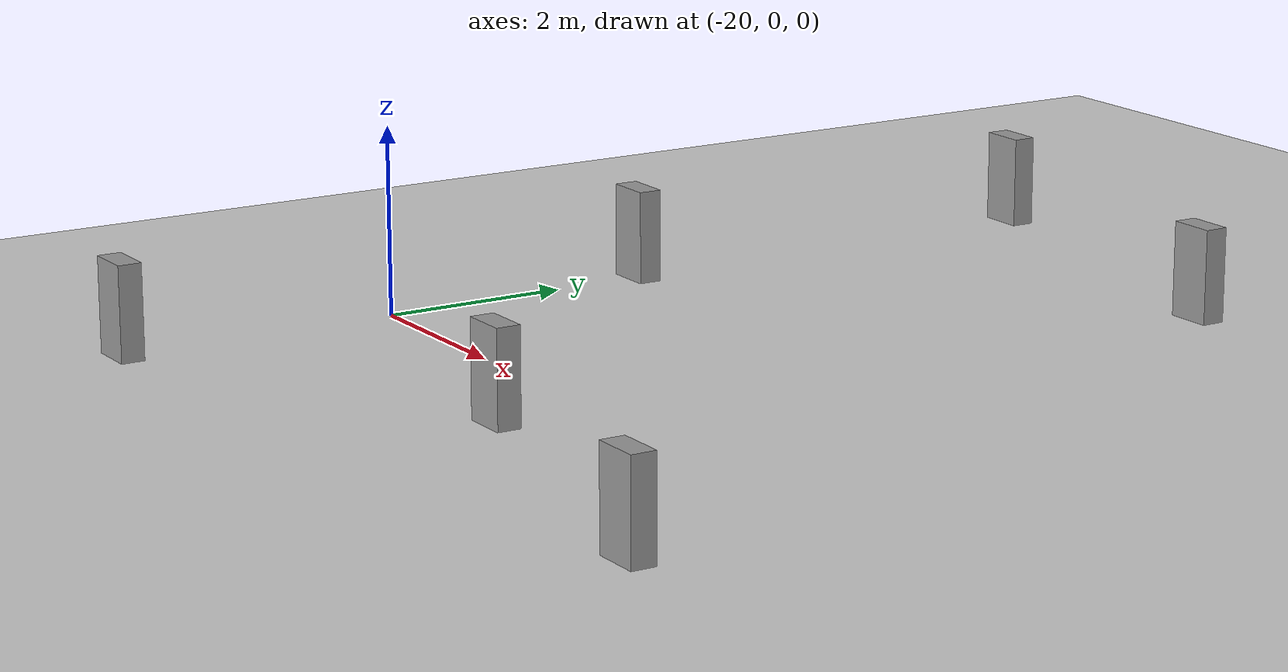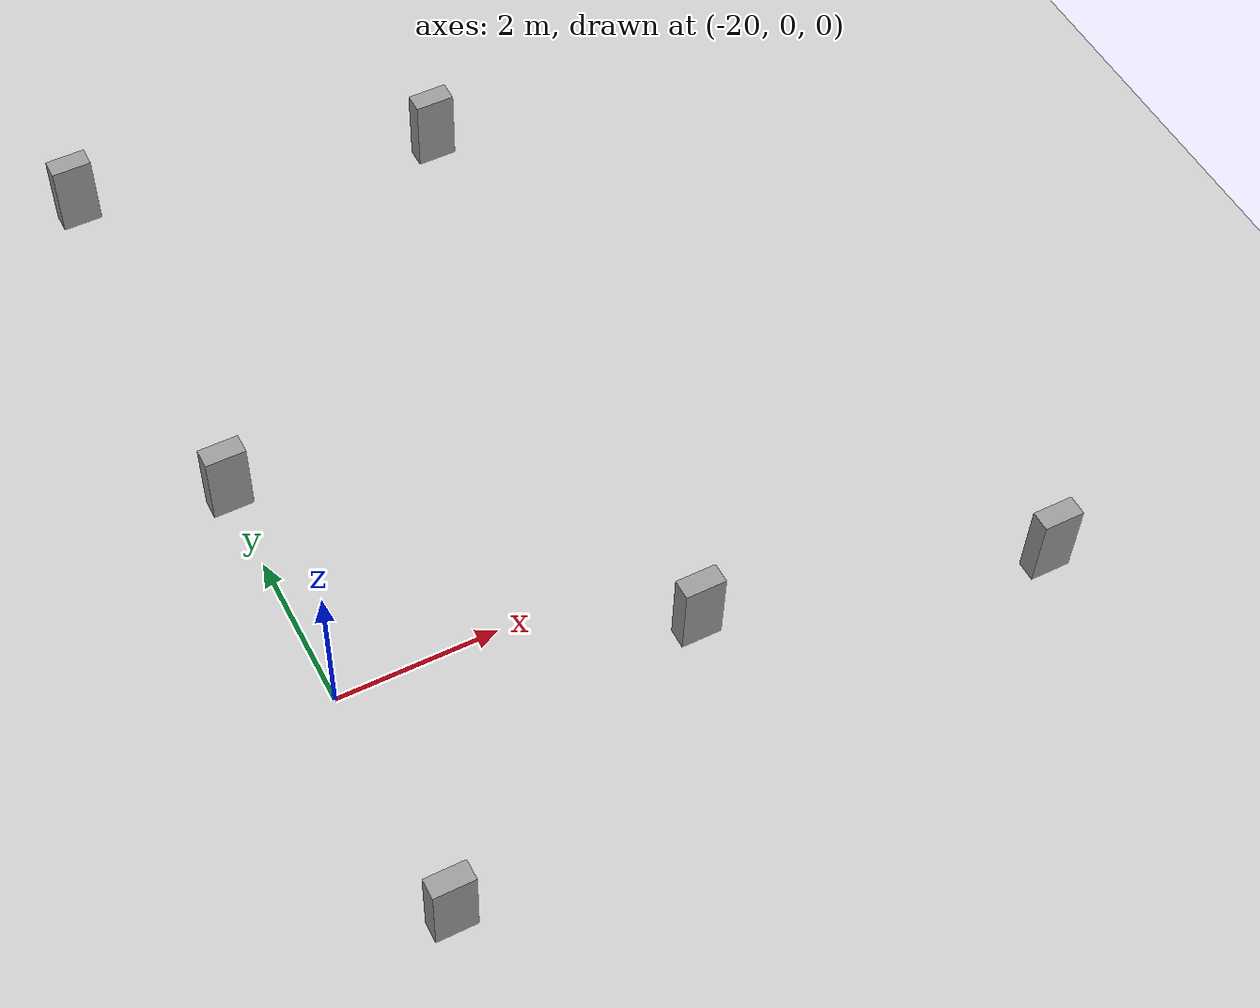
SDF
<sdf version="1.7">
 <world name="default">
  <model name="ground_plane">
   <static>1</static>
   <link name="link">
    <collision name="collision">
     <geometry><plane><normal>0 0 1</normal><size>100 100</size></plane></geometry>
     <surface>
      <contact><collide_bitmask>65535</collide_bitmask></contact>
      <friction><ode><mu>100</mu><mu2>50</mu2></ode></friction>
     </surface>
    </collision>
    <visual name="visual">
     <cast_shadows>0</cast_shadows>
     <geometry><plane><normal>0 0 1</normal><size>100 100</size></plane></geometry>
     <material>
      <script><uri>file://media/materials/scripts/gazebo.material</uri><name>Gazebo/Grey</name></script>
     </material>
    </visual>
   </link>
  </model>
  <model name="box_race_car_clone_10">
   <link name="link">
    <inertial>
     <mass>1</mass>
     <inertia>
      <ixx>0.166667</ixx>
      <ixy>0</ixy>
      <ixz>0</ixz>
      <iyy>0.166667</iyy>
      <iyz>0</iyz>
      <izz>0.166667</izz>
     </inertia>
    </inertial>
    <visual name="visual">
     <geometry><box><size>0.5 0.25 1</size></box></geometry>
     <material>
      <script><name>Gazebo/Grey</name><uri>file://media/materials/scripts/gazebo.material</uri></script>
      <shader type="pixel"><normal_map>__default__</normal_map></shader>
      <ambient>0.3 0.3 0.3 1</ambient>
      <diffuse>0.7 0.7 0.7 1</diffuse>
      <specular>0.01 0.01 0.01 1</specular>
      <emissive>0 0 0 1</emissive>
     </material>
    </visual>
    <collision name="collision">
     <geometry><box><size>0.5 0.25 1</size></box></geometry>
     <surface>
      <friction>
       <ode><mu>1</mu><mu2>1</mu2><fdir1>0 0 0</fdir1><slip1>0</slip1><slip2>0</slip2></ode>
       <torsional>
        <coefficient>1</coefficient>
        <patch_radius>0</patch_radius>
        <surface_radius>0</surface_radius>
        <use_patch_radius>1</use_patch_radius>
        <ode><slip>0</slip></ode>
       </torsional>
      </friction>
      <bounce><restitution_coefficient>0</restitution_coefficient><threshold>1e+06</threshold></bounce>
      <contact>
       <collide_without_contact>0</collide_without_contact>
       <collide_without_contact_bitmask>1</collide_without_contact_bitmask>
       <collide_bitmask>1</collide_bitmask>
       <ode>
        <soft_cfm>0</soft_cfm>
        <soft_erp>0.2</soft_erp>
        <kp>1e+13</kp>
        <kd>1</kd>
        <max_vel>0.01</max_vel>
        <min_depth>0</min_depth>
       </ode>
       <bullet>
        <split_impulse>1</split_impulse>
        <split_impulse_penetration_threshold>-0.01</split_impulse_penetration_threshold>
        <soft_cfm>0</soft_cfm>
        <soft_erp>0.2</soft_erp>
        <kp>1e+13</kp>
        <kd>1</kd>
       </bullet>
      </contact>
     </surface>
    </collision>
   </link>
   <static>0</static>
   <pose>-20 8 0.499999 1e-06 4e-06 0.000228</pose>
  </model>
  <model name="box_race_car_clone_11">
   <link name="link">
    <inertial>
     <mass>1</mass>
     <inertia>
      <ixx>0.166667</ixx>
      <ixy>0</ixy>
      <ixz>0</ixz>
      <iyy>0.166667</iyy>
      <iyz>0</iyz>
      <izz>0.166667</izz>
     </inertia>
    </inertial>
    <visual name="visual">
     <geometry><box><size>0.5 0.25 1</size></box></geometry>
     <material>
      <script><name>Gazebo/Grey</name><uri>file://media/materials/scripts/gazebo.material</uri></script>
      <shader type="pixel"><normal_map>__default__</normal_map></shader>
      <ambient>0.3 0.3 0.3 1</ambient>
      <diffuse>0.7 0.7 0.7 1</diffuse>
      <specular>0.01 0.01 0.01 1</specular>
      <emissive>0 0 0 1</emissive>
     </material>
    </visual>
    <collision name="collision">
     <geometry><box><size>0.5 0.25 1</size></box></geometry>
     <surface>
      <friction>
       <ode><mu>1</mu><mu2>1</mu2><fdir1>0 0 0</fdir1><slip1>0</slip1><slip2>0</slip2></ode>
       <torsional>
        <coefficient>1</coefficient>
        <patch_radius>0</patch_radius>
        <surface_radius>0</surface_radius>
        <use_patch_radius>1</use_patch_radius>
        <ode><slip>0</slip></ode>
       </torsional>
      </friction>
      <bounce><restitution_coefficient>0</restitution_coefficient><threshold>1e+06</threshold></bounce>
      <contact>
       <collide_without_contact>0</collide_without_contact>
       <collide_without_contact_bitmask>1</collide_without_contact_bitmask>
       <collide_bitmask>1</collide_bitmask>
       <ode>
        <soft_cfm>0</soft_cfm>
        <soft_erp>0.2</soft_erp>
        <kp>1e+13</kp>
        <kd>1</kd>
        <max_vel>0.01</max_vel>
        <min_depth>0</min_depth>
       </ode>
       <bullet>
        <split_impulse>1</split_impulse>
        <split_impulse_penetration_threshold>-0.01</split_impulse_penetration_threshold>
        <soft_cfm>0</soft_cfm>
        <soft_erp>0.2</soft_erp>
        <kp>1e+13</kp>
        <kd>1</kd>
       </bullet>
      </contact>
     </surface>
    </collision>
   </link>
   <static>0</static>
   <pose>-20 3 0.500001 1e-06 -2e-06 0.000143</pose>
  </model>
  <model name="box_race_car_clone_12">
   <link name="link">
    <inertial>
     <mass>1</mass>
     <inertia>
      <ixx>0.166667</ixx>
      <ixy>0</ixy>
      <ixz>0</ixz>
      <iyy>0.166667</iyy>
      <iyz>0</iyz>
      <izz>0.166667</izz>
     </inertia>
    </inertial>
    <visual name="visual">
     <geometry><box><size>0.5 0.25 1</size></box></geometry>
     <material>
      <script><name>Gazebo/Grey</name><uri>file://media/materials/scripts/gazebo.material</uri></script>
      <shader type="pixel"><normal_map>__default__</normal_map></shader>
      <ambient>0.3 0.3 0.3 1</ambient>
      <diffuse>0.7 0.7 0.7 1</diffuse>
      <specular>0.01 0.01 0.01 1</specular>
      <emissive>0 0 0 1</emissive>
     </material>
    </visual>
    <collision name="collision">
     <geometry><box><size>0.5 0.25 1</size></box></geometry>
     <surface>
      <friction>
       <ode><mu>1</mu><mu2>1</mu2><fdir1>0 0 0</fdir1><slip1>0</slip1><slip2>0</slip2></ode>
       <torsional>
        <coefficient>1</coefficient>
        <patch_radius>0</patch_radius>
        <surface_radius>0</surface_radius>
        <use_patch_radius>1</use_patch_radius>
        <ode><slip>0</slip></ode>
       </torsional>
      </friction>
      <bounce><restitution_coefficient>0</restitution_coefficient><threshold>1e+06</threshold></bounce>
      <contact>
       <collide_without_contact>0</collide_without_contact>
       <collide_without_contact_bitmask>1</collide_without_contact_bitmask>
       <collide_bitmask>1</collide_bitmask>
       <ode>
        <soft_cfm>0</soft_cfm>
        <soft_erp>0.2</soft_erp>
        <kp>1e+13</kp>
        <kd>1</kd>
        <max_vel>0.01</max_vel>
        <min_depth>0</min_depth>
       </ode>
       <bullet>
        <split_impulse>1</split_impulse>
        <split_impulse_penetration_threshold>-0.01</split_impulse_penetration_threshold>
        <soft_cfm>0</soft_cfm>
        <soft_erp>0.2</soft_erp>
        <kp>1e+13</kp>
        <kd>1</kd>
       </bullet>
      </contact>
     </surface>
    </collision>
   </link>
   <static>0</static>
   <pose>-20 -3 0.500001 1e-06 -2e-06 0.00022</pose>
  </model>
  <model name="box_race_car_clone_33">
   <link name="link">
    <inertial>
     <mass>1</mass>
     <inertia>
      <ixx>0.166667</ixx>
      <ixy>0</ixy>
      <ixz>0</ixz>
      <iyy>0.166667</iyy>
      <iyz>0</iyz>
      <izz>0.166667</izz>
     </inertia>
    </inertial>
    <visual name="visual">
     <geometry><box><size>0.5 0.25 1</size></box></geometry>
     <material>
      <script><name>Gazebo/Grey</name><uri>file://media/materials/scripts/gazebo.material</uri></script>
      <shader type="pixel"><normal_map>__default__</normal_map></shader>
      <ambient>0.3 0.3 0.3 1</ambient>
      <diffuse>0.7 0.7 0.7 1</diffuse>
      <specular>0.01 0.01 0.01 1</specular>
      <emissive>0 0 0 1</emissive>
     </material>
    </visual>
    <collision name="collision">
     <geometry><box><size>0.5 0.25 1</size></box></geometry>
     <surface>
      <friction>
       <ode><mu>1</mu><mu2>1</mu2><fdir1>0 0 0</fdir1><slip1>0</slip1><slip2>0</slip2></ode>
       <torsional>
        <coefficient>1</coefficient>
        <patch_radius>0</patch_radius>
        <surface_radius>0</surface_radius>
        <use_patch_radius>1</use_patch_radius>
        <ode><slip>0</slip></ode>
       </torsional>
      </friction>
      <bounce><restitution_coefficient>0</restitution_coefficient><threshold>1e+06</threshold></bounce>
      <contact>
       <collide_without_contact>0</collide_without_contact>
       <collide_without_contact_bitmask>1</collide_without_contact_bitmask>
       <collide_bitmask>1</collide_bitmask>
       <ode>
        <soft_cfm>0</soft_cfm>
        <soft_erp>0.2</soft_erp>
        <kp>1e+13</kp>
        <kd>1</kd>
        <max_vel>0.01</max_vel>
        <min_depth>0</min_depth>
       </ode>
       <bullet>
        <split_impulse>1</split_impulse>
        <split_impulse_penetration_threshold>-0.01</split_impulse_penetration_threshold>
        <soft_cfm>0</soft_cfm>
        <soft_erp>0.2</soft_erp>
        <kp>1e+13</kp>
        <kd>1</kd>
       </bullet>
      </contact>
     </surface>
    </collision>
   </link>
   <static>0</static>
   <pose>-15.4833 7 0.499999 2e-06 4e-06 0.000352</pose>
  </model>
  <model name="box_race_car_clone_34">
   <link name="link">
    <inertial>
     <mass>1</mass>
     <inertia>
      <ixx>0.166667</ixx>
      <ixy>0</ixy>
      <ixz>0</ixz>
      <iyy>0.166667</iyy>
      <iyz>0</iyz>
      <izz>0.166667</izz>
     </inertia>
    </inertial>
    <visual name="visual">
     <geometry><box><size>0.5 0.25 1</size></box></geometry>
     <material>
      <script><name>Gazebo/Grey</name><uri>file://media/materials/scripts/gazebo.material</uri></script>
      <shader type="pixel"><normal_map>__default__</normal_map></shader>
      <ambient>0.3 0.3 0.3 1</ambient>
      <diffuse>0.7 0.7 0.7 1</diffuse>
      <specular>0.01 0.01 0.01 1</specular>
      <emissive>0 0 0 1</emissive>
     </material>
    </visual>
    <collision name="collision">
     <geometry><box><size>0.5 0.25 1</size></box></geometry>
     <surface>
      <friction>
       <ode><mu>1</mu><mu2>1</mu2><fdir1>0 0 0</fdir1><slip1>0</slip1><slip2>0</slip2></ode>
       <torsional>
        <coefficient>1</coefficient>
        <patch_radius>0</patch_radius>
        <surface_radius>0</surface_radius>
        <use_patch_radius>1</use_patch_radius>
        <ode><slip>0</slip></ode>
       </torsional>
      </friction>
      <bounce><restitution_coefficient>0</restitution_coefficient><threshold>1e+06</threshold></bounce>
      <contact>
       <collide_without_contact>0</collide_without_contact>
       <collide_without_contact_bitmask>1</collide_without_contact_bitmask>
       <collide_bitmask>1</collide_bitmask>
       <ode>
        <soft_cfm>0</soft_cfm>
        <soft_erp>0.2</soft_erp>
        <kp>1e+13</kp>
        <kd>1</kd>
        <max_vel>0.01</max_vel>
        <min_depth>0</min_depth>
       </ode>
       <bullet>
        <split_impulse>1</split_impulse>
        <split_impulse_penetration_threshold>-0.01</split_impulse_penetration_threshold>
        <soft_cfm>0</soft_cfm>
        <soft_erp>0.2</soft_erp>
        <kp>1e+13</kp>
        <kd>1</kd>
       </bullet>
      </contact>
     </surface>
    </collision>
   </link>
   <static>0</static>
   <pose>-16 -1.00001 0.500001 1e-06 2e-06 0.000375</pose>
  </model>
  <model name="box_race_car_clone_49">
   <link name="link">
    <inertial>
     <mass>1</mass>
     <inertia>
      <ixx>0.166667</ixx>
      <ixy>0</ixy>
      <ixz>0</ixz>
      <iyy>0.166667</iyy>
      <iyz>0</iyz>
      <izz>0.166667</izz>
     </inertia>
    </inertial>
    <visual name="visual">
     <geometry><box><size>0.5 0.25 1</size></box></geometry>
     <material>
      <script><name>Gazebo/Grey</name><uri>file://media/materials/scripts/gazebo.material</uri></script>
      <shader type="pixel"><normal_map>__default__</normal_map></shader>
      <ambient>0.3 0.3 0.3 1</ambient>
      <diffuse>0.7 0.7 0.7 1</diffuse>
      <specular>0.01 0.01 0.01 1</specular>
      <emissive>0 0 0 1</emissive>
     </material>
    </visual>
    <collision name="collision">
     <geometry><box><size>0.5 0.25 1</size></box></geometry>
     <surface>
      <friction>
       <ode><mu>1</mu><mu2>1</mu2><fdir1>0 0 0</fdir1><slip1>0</slip1><slip2>0</slip2></ode>
       <torsional>
        <coefficient>1</coefficient>
        <patch_radius>0</patch_radius>
        <surface_radius>0</surface_radius>
        <use_patch_radius>1</use_patch_radius>
        <ode><slip>0</slip></ode>
       </torsional>
      </friction>
      <bounce><restitution_coefficient>0</restitution_coefficient><threshold>1e+06</threshold></bounce>
      <contact>
       <collide_without_contact>0</collide_without_contact>
       <collide_without_contact_bitmask>1</collide_without_contact_bitmask>
       <collide_bitmask>1</collide_bitmask>
       <ode>
        <soft_cfm>0</soft_cfm>
        <soft_erp>0.2</soft_erp>
        <kp>1e+13</kp>
        <kd>1</kd>
        <max_vel>0.01</max_vel>
        <min_depth>0</min_depth>
       </ode>
       <bullet>
        <split_impulse>1</split_impulse>
        <split_impulse_penetration_threshold>-0.01</split_impulse_penetration_threshold>
        <soft_cfm>0</soft_cfm>
        <soft_erp>0.2</soft_erp>
        <kp>1e+13</kp>
        <kd>1</kd>
       </bullet>
      </contact>
     </surface>
    </collision>
   </link>
   <static>0</static>
   <pose>-12 -2 0.499998 -4e-06 -5e-06 0.000177</pose>
  </model>
 </world>
</sdf>
